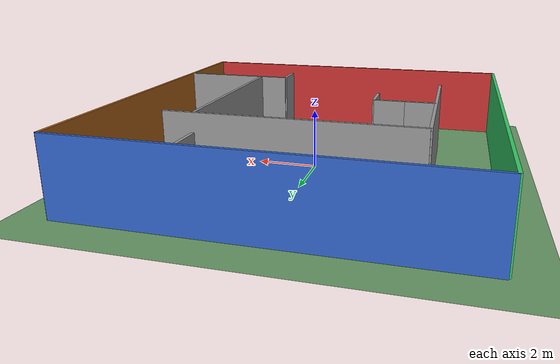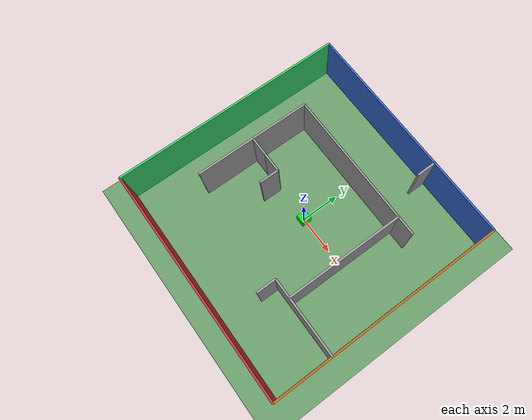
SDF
<?xml version="1.0" ?>
<sdf version="1.6">
  <world name="extended_maze_world">

    <!-- Include Sun and Ground Plane -->
    <include>
      <uri>model://sun</uri>
    </include>

    <include>
      <uri>model://ground_plane</uri>
    </include>

    <!-- Ground plane material -->
    <model name="ground_plane_custom">
      <static>true</static>
      <link name="link">
        <collision name="collision">
          <geometry>
            <plane>
              <normal>0 0 1</normal>
              <size>20 20</size>
            </plane>
          </geometry>
          <surface>
            <friction>
              <ode>
                <mu>1</mu>
                <mu2>1</mu2>
              </ode>
            </friction>
          </surface>
        </collision>
        <visual name="visual">
          <geometry>
            <plane>
              <normal>0 0 1</normal>
              <size>20 20</size>
            </plane>
          </geometry>
          <material>
            <ambient>0.3 0.5 0.3 1</ambient>
            <diffuse>0.4 0.6 0.4 1</diffuse>
          </material>
        </visual>
      </link>
    </model>

    <!-- Adding a point light for better illumination -->
    <light type="point" name="point_light_1">
      <pose>0 0 10 0 0 0</pose>
      <diffuse>1 1 1 1</diffuse>
      <specular>0.1 0.1 0.1 1</specular>
      <attenuation>
        <range>20</range>
        <constant>0.5</constant>
        <linear>0.01</linear>
        <quadratic>0.001</quadratic>
      </attenuation>
    </light>

    <!-- Outer Boundary Walls -->
    <model name="back_wall">
      <static>true</static>
      <pose>0 6 0 0 0 0</pose>
      <link name="link">
        <collision name="collision">
          <geometry>
            <box>
              <size>12 0.1 2.5</size>
            </box>
          </geometry>
          <pose>0 0 1.25 0 0 0</pose>
        </collision>
        <visual name="visual">
          <geometry>
            <box>
              <size>12 0.1 2.5</size>
            </box>
          </geometry>
          <pose>0 0 1.25 0 0 0</pose>
          <material>
            <ambient>0.2 0.4 0.8 1</ambient> <!-- Blue Wall -->
            <diffuse>0.2 0.4 0.8 1</diffuse>
          </material>
        </visual>
      </link>
    </model>

    <model name="front_wall">
      <static>true</static>
      <pose>0 -6 0 0 0 0</pose>
      <link name="link">
        <collision name="collision">
          <geometry>
            <box>
              <size>12 0.1 2.5</size>
            </box>
          </geometry>
          <pose>0 0 1.25 0 0 0</pose>
        </collision>
        <visual name="visual">
          <geometry>
            <box>
              <size>12 0.1 2.5</size>
            </box>
          </geometry>
          <pose>0 0 1.25 0 0 0</pose>
          <material>
            <ambient>0.8 0.2 0.2 1</ambient> <!-- Red Wall -->
            <diffuse>0.8 0.2 0.2 1</diffuse>
          </material>
        </visual>
      </link>
    </model>

    <model name="left_wall">
      <static>true</static>
      <pose>-6 0 0 0 0 1.5708</pose>
      <link name="link">
        <collision name="collision">
          <geometry>
            <box>
              <size>12 0.1 2.5</size>
            </box>
          </geometry>
          <pose>0 0 1.25 0 0 0</pose>
        </collision>
        <visual name="visual">
          <geometry>
            <box>
              <size>12 0.1 2.5</size>
            </box>
          </geometry>
          <pose>0 0 1.25 0 0 0</pose>
          <material>
            <ambient>0.2 0.8 0.4 1</ambient> <!-- Green Wall -->
            <diffuse>0.2 0.8 0.4 1</diffuse>
          </material>
        </visual>
      </link>
    </model>

    <model name="right_wall">
      <static>true</static>
      <pose>6 0 0 0 0 1.5708</pose>
      <link name="link">
        <collision name="collision">
          <geometry>
            <box>
              <size>12 0.1 2.5</size>
            </box>
          </geometry>
          <pose>0 0 1.25 0 0 0</pose>
        </collision>
        <visual name="visual">
          <geometry>
            <box>
              <size>12 0.1 2.5</size>
            </box>
          </geometry>
          <pose>0 0 1.25 0 0 0</pose>
          <material>
            <ambient>0.7 0.4 0.1 1</ambient> <!-- Orange Wall -->
            <diffuse>0.7 0.4 0.1 1</diffuse>
          </material>
        </visual>
      </link>
    </model>

    <!-- Inner Maze Walls with expanded structure -->
    <model name="inner_wall_1">
      <static>true</static>
      <pose>0 3 0 0 0 0</pose>
      <link name="link">
        <collision name="collision">
          <geometry>
            <box>
              <size>6 0.1 2.5</size>
            </box>
          </geometry>
          <pose>0 0 1.25 0 0 0</pose>
        </collision>
        <visual name="visual">
          <geometry>
            <box>
              <size>8 0.1 2.5</size>
            </box>
          </geometry>
          <pose>0 0 1.25 0 0 0</pose>
          <material>
            <ambient>0.6 0.6 0.6 1</ambient> <!-- Gray Inner Walls -->
            <diffuse>0.6 0.6 0.6 1</diffuse>
          </material>
        </visual>
      </link>
    </model>

    <model name="inner_wall_2">
      <static>true</static>
      <pose>-4 0 0 0 0 1.5708</pose>
      <link name="link">
        <collision name="collision">
          <geometry>
            <box>
              <size>6 0.1 2.5</size>
            </box>
          </geometry>
          <pose>0 0 1.25 0 0 0</pose>
        </collision>
        <visual name="visual">
          <geometry>
            <box>
              <size>6 0.1 2.5</size>
            </box>
          </geometry>
          <pose>0 0 1.25 0 0 0</pose>
          <material>
            <ambient>0.6 0.6 0.6 1</ambient>
            <diffuse>0.6 0.6 0.6 1</diffuse>
          </material>
        </visual>
      </link>
    </model>

    <model name="inner_wall_3">
      <static>true</static>
      <pose>3 0 0 0 0 1.5708</pose>
      <link name="link">
        <collision name="collision">
          <geometry>
            <box>
              <size>6 0.1 2.5</size>
            </box>
          </geometry>
          <pose>0 0 1.25 0 0 0</pose>
        </collision>
        <visual name="visual">
          <geometry>
            <box>
              <size>6 0.1 2.5</size>
            </box>
          </geometry>
          <pose>0 0 1.25 0 0 0</pose>
          <material>
            <ambient>0.6 0.6 0.6 1</ambient>
            <diffuse>0.6 0.6 0.6 1</diffuse>
          </material>
        </visual>
      </link>
    </model>
    <model name="small_wall_1">
	  <static>true</static>
	  <pose>2 -3.5 0 0 0 1.5708</pose> <!-- Adjust the position as needed -->
	  <link name="link">
	    <collision name="collision">
	      <geometry>
		<box>
		  <size>1 0.1 2.5</size> <!-- 1 meter long, 0.1 meter thick, 2.5 meters high -->
		</box>
	      </geometry>
	      <pose>0 0 1.25 0 0 0</pose> <!-- Positioning the wall at the proper height -->
	    </collision>
	    <visual name="visual">
	      <geometry>
		<box>
		  <size>1 0.1 2.5</size> <!-- 1 meter long, 0.1 meter thick, 2.5 meters high -->
		</box>
	      </geometry>
	      <pose>0 0 1.25 0 0 0</pose>
	      <material>
		<ambient>0.6 0.6 0.6 1</ambient> <!-- Gray wall color -->
		<diffuse>0.6 0.6 0.6 1</diffuse>
	      </material>
	    </visual>
	  </link>
	</model>
	<model name="small_wall_5">
	  <static>true</static>
	  <pose>-2.5 0 0 0 0 0</pose> <!-- Adjust the position as needed -->
	  <link name="link">
	    <collision name="collision">
	      <geometry>
		<box>
		  <size>1 0.1 2.5</size> <!-- 1 meter long, 0.1 meter thick, 2.5 meters high -->
		</box>
	      </geometry>
	      <pose>0 0 1.25 0 0 0</pose> <!-- Positioning the wall at the proper height -->
	    </collision>
	    <visual name="visual">
	      <geometry>
		<box>
		  <size>1 0.1 2.5</size> <!-- 1 meter long, 0.1 meter thick, 2.5 meters high -->
		</box>
	      </geometry>
	      <pose>0 0 1.25 0 0 0</pose>
	      <material>
		<ambient>0.6 0.6 0.6 1</ambient> <!-- Gray wall color -->
		<diffuse>0.6 0.6 0.6 1</diffuse>
	      </material>
	    </visual>
	  </link>
	</model>
	<model name="small_wall_3">
	  <static>true</static>
	  <pose>-3.5 0 0 0 0 0</pose> <!-- Adjust the position as needed -->
	  <link name="link">
	    <collision name="collision">
	      <geometry>
		<box>
		  <size>1 0.1 2.5</size> <!-- 1 meter long, 0.1 meter thick, 2.5 meters high -->
		</box>
	      </geometry>
	      <pose>0 0 1.25 0 0 0</pose> <!-- Positioning the wall at the proper height -->
	    </collision>
	    <visual name="visual">
	      <geometry>
		<box>
		  <size>1 0.1 2.5</size> <!-- 1 meter long, 0.1 meter thick, 2.5 meters high -->
		</box>
	      </geometry>
	      <pose>0 0 1.25 0 0 0</pose>
	      <material>
		<ambient>0.6 0.6 0.6 1</ambient> <!-- Gray wall color -->
		<diffuse>0.6 0.6 0.6 1</diffuse>
	      </material>
	    </visual>
	  </link>
	</model>
	<model name="small_wall_4">
	  <static>true</static>
	  <pose>-2 -0.5 0 0 0 1.5708</pose> <!-- Adjust the position as needed -->
	  <link name="link">
	    <collision name="collision">
	      <geometry>
		<box>
		  <size>1 0.1 2.5</size> <!-- 1 meter long, 0.1 meter thick, 2.5 meters high -->
		</box>
	      </geometry>
	      <pose>0 0 1.25 0 0 0</pose> <!-- Positioning the wall at the proper height -->
	    </collision>
	    <visual name="visual">
	      <geometry>
		<box>
		  <size>1 0.1 2.5</size> <!-- 1 meter long, 0.1 meter thick, 2.5 meters high -->
		</box>
	      </geometry>
	      <pose>0 0 1.25 0 0 0</pose>
	      <material>
		<ambient>0.6 0.6 0.6 1</ambient> <!-- Gray wall color -->
		<diffuse>0.6 0.6 0.6 1</diffuse>
	      </material>
	    </visual>
	  </link>
	</model>

	<model name="small_wall_2">
	  <static>true</static>
	  <pose>2 5.5 0 0 0 1.5708</pose> <!-- Adjust the position as needed -->
	  <link name="link">
	    <collision name="collision">
	      <geometry>
		<box>
		  <size>1 0.1 2.5</size> <!-- 1 meter long, 0.1 meter thick, 2.5 meters high -->
		</box>
	      </geometry>
	      <pose>0 0 1.25 0 0 0</pose>
	    </collision>
	    <visual name="visual">
	      <geometry>
		<box>
		  <size>1 0.1 2.5</size>
		</box>
	      </geometry>
	      <pose>0 0 1.25 0 0 0</pose>
	      <material>
		<ambient>0.6 0.6 0.6 1</ambient> <!-- Gray wall color -->
		<diffuse>0.6 0.6 0.6 1</diffuse>
	      </material>
	    </visual>
	  </link>
	</model>

    <model name="inner_wall_5">
      <static>true</static>
      <pose>4 -3 0 0 0 0</pose>
      <link name="link">
        <collision name="collision">
          <geometry>
            <box>
              <size>4 0.1 2.5</size>
            </box>
          </geometry>
          <pose>0 0 1.25 0 0 0</pose>
        </collision>
        <visual name="visual">
          <geometry>
            <box>
              <size>4 0.1 2.5</size>
            </box>
          </geometry>
          <pose>0 0 1.25 0 0 0</pose>
          <material>
            <ambient>0.6 0.6 0.6 1</ambient>
            <diffuse>0.6 0.6 0.6 1</diffuse>
          </material>
        </visual>
      </link>
    </model>

    <!-- Central Goal -->
    <model name="goal">
      <pose>0 0 0 0 0 0</pose>
      <link name="link">
        <collision name="collision">
          <geometry>
            <box>
              <size>0.5 0.5 0.5</size>
            </box>
          </geometry>
          <pose>0 0 0.25 0 0 0</pose>
        </collision>
        <visual name="visual">
          <geometry>
            <box>
              <size>0.5 0.5 0.5</size>
            </box>
          </geometry>
          <pose>0 0 0.25 0 0 0</pose>
          <material>
            <ambient>0 1 0 1</ambient>  <!-- Green Goal -->
            <diffuse>0 1 0 1</diffuse>
          </material>
        </visual>
      </link>
    </model>

  </world>
</sdf>
